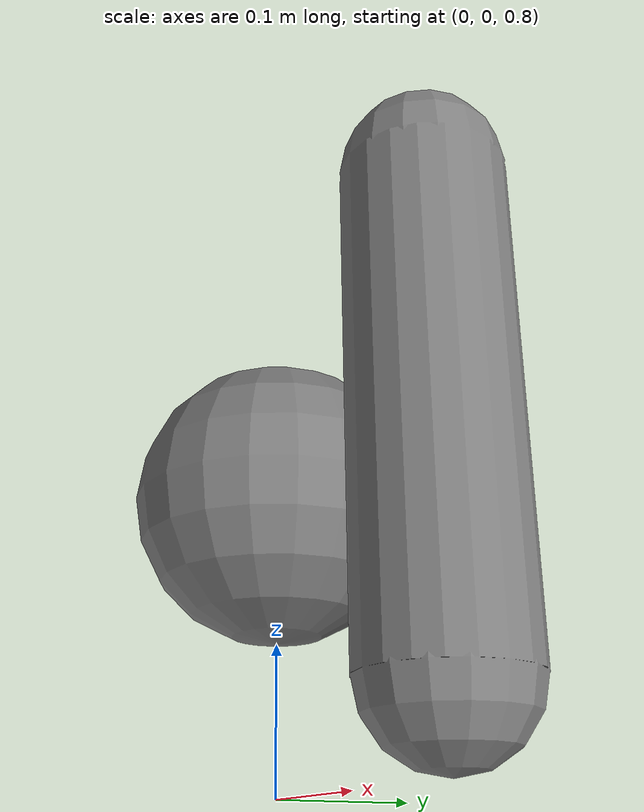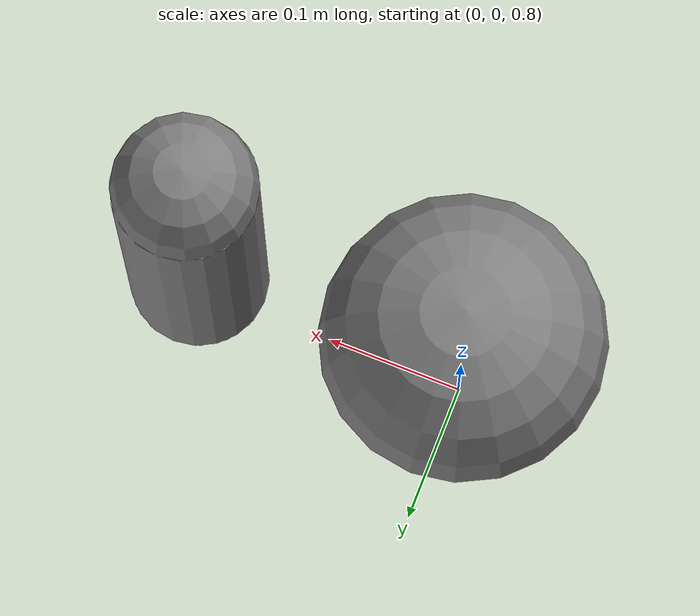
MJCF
<mujoco model="name_test">
      <worldbody>
        <body name="torso" pos="0 0 1">
          <joint name="root" type="free"/>
          <geom name="torso_geom" type="sphere" size="0.1"/>
          <site name="torso_site" size="0.01"/>
          <body name="arm" pos="0.2 0 0">
            <joint name="shoulder" type="hinge" axis="0 1 0"/>
            <geom name="arm_geom" type="capsule" size="0.05 0.15"/>
          </body>
        </body>
      </worldbody>
      <tendon>
        <fixed name="ten0">
          <joint joint="shoulder" coef="1.0"/>
        </fixed>
      </tendon>
      <actuator>
        <motor name="motor0" joint="shoulder"/>
      </actuator>
      <sensor>
        <jointpos name="shoulder_pos" joint="shoulder"/>
        <jointvel name="shoulder_vel" joint="shoulder"/>
      </sensor>
      <equality>
        <joint name="eq_shoulder" joint1="shoulder" polycoef="0 1 0 0 0"/>
      </equality>
    </mujoco>
